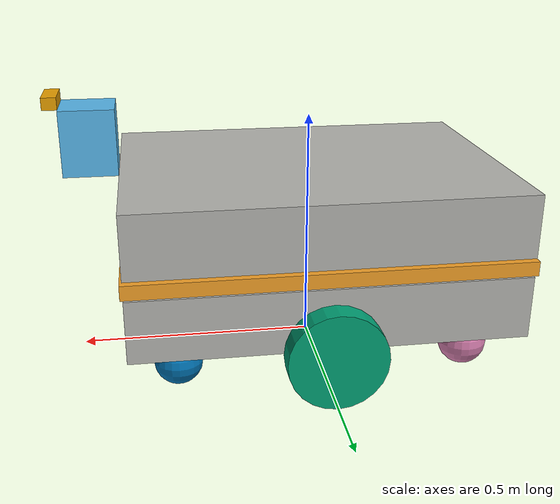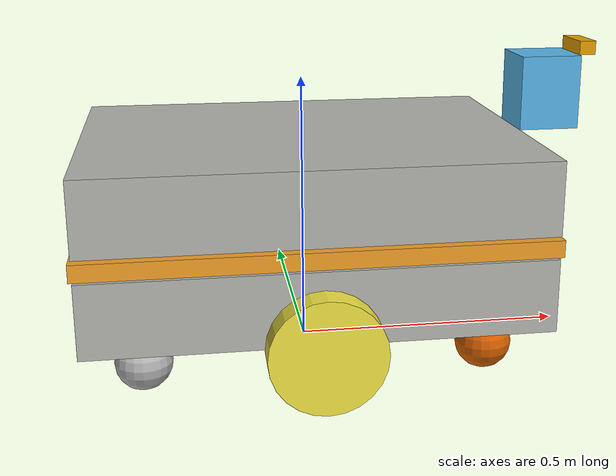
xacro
<?xml version="1.0"?>
<robot xmlns:xacro="http://www.ros.org/wiki/xacro" name="warehouse_rover">

<xacro:arg name="use_gazebo" default="true"/>

<xacro:include filename="$(find rover_description)/urdf/properties.xacro"/>
<xacro:include filename="$(find rover_description)/urdf/inertia_macros.xacro"/>
<xacro:include filename="$(find rover_description)/urdf/base.xacro"/>
<xacro:include filename="$(find rover_description)/urdf/wheels.xacro"/>
<xacro:include filename="$(find rover_description)/urdf/ros2_control.xacro"/>
<xacro:include filename="$(find rover_description)/urdf/caster_wheels.xacro"/>
<xacro:include filename="$(find rover_description)/urdf/gazebo_links.xacro"/>
<xacro:include filename="$(find rover_description)/urdf/gazebo_plugins.xacro"/>

</robot>

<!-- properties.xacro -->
<robot xmlns:xacro="http://www.ros.org/wiki/xacro">

<xacro:property name="body_length" value="0.80" />
<xacro:property name="body_width"  value="0.60" />
<xacro:property name="body_height" value="0.30" />
<xacro:property name="ground_clearance"  value="0.1" />

<xacro:property name="wheel_radius" value="0.10" />
<xacro:property name="wheel_width"  value="0.05" />
<xacro:property name="wheel_separation" value="0.66" />

<xacro:property name="caster_radius"  value="0.05" />

<xacro:property name="body_mass" value="70"/>
<xacro:property name="wheel_mass" value="2.5"/>
<xacro:property name="caster_mass" value="1.25"/>

<xacro:property name="laser_length" value="0.111" />
<xacro:property name="laser_width"  value="0.112" />
<xacro:property name="laser_height" value="0.135" />
<xacro:property name="laser_mass" value="1.15"/>

<xacro:property name="camera_length" value="0.03" />
<xacro:property name="camera_width"  value="0.09" />
<xacro:property name="camera_height" value="0.025" />
<xacro:property name="camera_mass" value="0.072"/>

<xacro:property name="deck_height" value="${ ground_clearance + body_height }"/>

<xacro:property name="base_foot" value="${ (body_height/2) + ground_clearance }"/>

<material name="body_grey">
  <color rgba="0.70 0.70 0.68 1.0"/>
</material>

<material name="dark_grey">
  <color rgba="0.25 0.25 0.24 1.0"/>
</material>

<material name="black">
  <color rgba="0.5 0.5 0.5 1.0"/>
</material>

<material name="warning_yellow">
  <color rgba="0.94 0.62 0.15 1.0"/>
</material>

<material name="sensor_blue">
  <color rgba="0.21 0.54 0.87 1.0"/>
</material>

</robot>

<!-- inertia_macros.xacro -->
<robot xmlns:xacro="http://www.ros.org/wiki/xacro">

<xacro:macro name="box_inertia" params="mass x y z">
  <inertial>
    <mass value="${mass}"/>
    <inertia ixx="${mass*(y*y+z*z)/12}" ixy="0" ixz="0"
             iyy="${mass*(x*x+z*z)/12}" iyz="0"
             izz="${mass*(x*x+y*y)/12}"/>
  </inertial>
</xacro:macro>

<xacro:macro name="cylinder_inertia" params="mass r h">
  <inertial>
    <mass value="${mass}"/>
    <inertia ixx="${(mass/12)*(3*r*r+h*h)}" ixy="0" ixz="0"
             iyy="${(mass/2)*(r*r)}" iyz="0"
             izz="${(mass/12)*(3*r*r+h*h)}"/>
  </inertial>
</xacro:macro>

<xacro:macro name="sphere_inertia" params="mass r">
  <inertial>
    <mass value="${mass}"/>
      <inertia ixx="${(2/5) * mass * (r*r)}" ixy="0" ixz="0"
             iyy="${(2/5) * mass * (r*r)}" iyz="0"
             izz="${(2/5) * mass * (r*r)}"/>
  </inertial>
</xacro:macro>

</robot>

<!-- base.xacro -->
<robot xmlns:xacro="http://www.ros.org/wiki/xacro">

        <link name="base_footprint"/>

        <link name="base_link">
   <visual>
    <origin xyz="0 0 0.085" rpy="0 0 0"/>
    <geometry>
        <box size="${body_length} ${body_width} 0.13"/>
    </geometry>
    <material name="body_grey"/>
</visual>

<visual>
    <origin xyz="0 0 -0.085" rpy="0 0 0"/>
    <geometry>
        <box size="${body_length} ${body_width} 0.13"/>
    </geometry>
    <material name="body_grey"/>
</visual>

<visual>
    <origin xyz="0 0 0" rpy="0 0 0"/>
    <geometry>
        <box size="${body_length + 0.01} ${body_width + 0.01} 0.03"/>
    </geometry>
    <material name="warning_yellow"/>
</visual>

    <collision>
        <geometry>
            <box size="${body_length} ${body_width} ${body_height}"/>
        </geometry>
    </collision>

    <xacro:box_inertia mass="${body_mass}" x="${body_length}" y="${body_width}" z="${body_height}"/>
</link>

         <joint name="base_footprint_joint" type="fixed">

            <parent link="base_footprint"/>
            <child link="base_link"/>
            <origin xyz="0 0.0 ${base_foot}" />

        </joint>

</robot>

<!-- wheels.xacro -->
<robot xmlns:xacro="http://www.ros.org/wiki/xacro">

<link name="left_wheel">
  <visual>
  <origin rpy="1.57 0 0" xyz="0 0 0"/>

      <geometry>
        <cylinder radius="${wheel_radius}" length="${wheel_width}"/>
      </geometry>

  </visual>

  <collision>
  <origin rpy="1.57 0 0" xyz="0 0 0"/>
  <geometry>
    <cylinder radius="${wheel_radius}" length="${wheel_width}"/>
  </geometry>
</collision>

<xacro:cylinder_inertia mass="${wheel_mass}" r="${wheel_radius}" h="${wheel_width}"/>

</link>

<joint name="left_wheel_joint" type="continuous">
  <parent link="base_link"/>
  <child link="left_wheel"/>
  <origin xyz="0 ${wheel_separation/2} ${-(body_height/2)}"/>
  <axis xyz="0 1 0"/>
</joint>

<link name="right_wheel">
  <visual>
  <origin rpy="1.57 0 0" xyz="0 0 0"/>

      <geometry>
        <cylinder radius="${wheel_radius}" length="${wheel_width}"/>
      </geometry>

  </visual>

  <collision>
  <origin rpy="1.57 0 0" xyz="0 0 0"/>
  <geometry>
    <cylinder radius="${wheel_radius}" length="${wheel_width}"/>
  </geometry>
</collision>
<xacro:cylinder_inertia mass="${wheel_mass}" r="${wheel_radius}" h="${wheel_width}"/>

</link>

    <joint name="right_wheel_joint" type="continuous">
    <parent link="base_link"/>
    <child link="right_wheel"/>
    <origin xyz="0 ${-wheel_separation/2} ${-(body_height/2)}"/>
    <axis xyz="0 1 0"/>
    </joint>

    <gazebo reference="left_wheel">
        <mu1>1.0</mu1>
        <mu2>1.0</mu2>
    </gazebo>

    <gazebo reference="right_wheel">
        <mu1>1.0</mu1>
        <mu2>1.0</mu2>
    </gazebo>

</robot>

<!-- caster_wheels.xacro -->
<robot xmlns:xacro="http://www.ros.org/wiki/xacro">
        <xacro:macro name="caster_wheel" params="prefix *origin">
        <link name="${prefix}">
            <visual>
            <geometry>
                <sphere radius="${caster_radius}"/>
            </geometry>
            </visual>

            <collision>
        <geometry>
            <sphere radius="${caster_radius}"/>
        </geometry>
        </collision>
            <xacro:sphere_inertia mass="${caster_mass}" r="${caster_radius}"/>
        </link>

        <gazebo reference="${prefix}">
        <mu1>0.0</mu1>
        <mu2>0.0</mu2>
        </gazebo>

        <joint name="${prefix}_joint" type="fixed">
            <parent link="base_link"/>
            <child link="${prefix}"/>
            <xacro:insert_block name="origin"/>
        </joint>
        </xacro:macro>

        <xacro:caster_wheel prefix="caster_front_left">
        <origin xyz="0.30 0.2 ${caster_radius - (ground_clearance + body_height/2)}"/>
        </xacro:caster_wheel>

        <xacro:caster_wheel prefix="caster_front_right">
        <origin xyz="0.30 -0.2 ${caster_radius - (ground_clearance + body_height/2)}"/>
        </xacro:caster_wheel>

        <xacro:caster_wheel prefix="caster_rear_left">
        <origin xyz="-0.30 0.2 ${caster_radius - (ground_clearance + body_height/2)}"/>
        </xacro:caster_wheel>

        <xacro:caster_wheel prefix="caster_rear_right">
        <origin xyz="-0.30 -0.2 ${caster_radius - (ground_clearance + body_height/2)}"/>
        </xacro:caster_wheel>

</robot>

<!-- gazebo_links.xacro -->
<robot xmlns:xacro="http://www.ros.org/wiki/xacro">

<link name="camera_link">

  <visual>
    <geometry>
      <box size="${camera_length} ${camera_width} ${camera_height}"/>
    </geometry>
  </visual>

  <collision>
    <geometry>
      <box size="${camera_length} ${camera_width} ${camera_height}"/>
    </geometry>
  </collision>
  <xacro:box_inertia mass="${camera_mass}" x="${camera_length}" y="${camera_width}" z="${camera_height}" />
</link>

<joint name="camera_joint" type="fixed">
  <origin xyz="${laser_length/2 + camera_length/2 } 0.0 ${laser_height/2 + camera_height /2}"/>
  <parent link="laser_link"/>
  <child link="camera_link"/>
</joint>

<gazebo reference="camera_link">
  <sensor name="camera" type="camera">
    <topic>camera/image_raw</topic>
    <update_rate>30</update_rate>
    <always_on>true</always_on>
    <gz_frame_id>camera_link</gz_frame_id>
    <camera>
      <horizontal_fov>1.047</horizontal_fov>
      <image>
        <width>640</width>
        <height>480</height>
        <format>R8G8B8</format>
      </image>
      <clip>
        <near>0.1</near>
        <far>15.0</far>
      </clip>
    </camera>
  </sensor>
</gazebo>

<link name="laser_link">

  <visual>
    <geometry>
      <box size="${laser_length} ${laser_width} ${laser_height}"/>
    </geometry>
  </visual>

  <collision>
    <geometry>
      <box size="${laser_length} ${laser_width} ${laser_height}"/>
    </geometry>
  </collision>
  <xacro:box_inertia mass="${laser_mass}" x="${laser_length}" y="${laser_width}" z="${laser_height}" />
</link>

<joint name="laser_joint" type="fixed">
  <origin xyz="${body_length/2 + laser_length/2} 0.0 ${body_height/2 + laser_height/2}"/>
  <parent link="base_link"/>
  <child link="laser_link"/>
</joint>

<gazebo reference="laser_link">
  <sensor name="laser" type="gpu_lidar">
    <topic>scan</topic>
    <gz_frame_id>laser_link</gz_frame_id>
    <update_rate>10</update_rate>
    <always_on>true</always_on>
    <visualize>true</visualize>
    <lidar>
      <scan>
        <horizontal>
          <samples>705</samples>
          <resolution>1</resolution>
          <min_angle>-2.4</min_angle>
          <max_angle>2.4</max_angle>
        </horizontal>
      </scan>
      <range>
        <min>0.05</min>
        <max>9.0</max>
        <resolution>0.01</resolution>
      </range>
    </lidar>
  </sensor>
</gazebo>

<link name="imu_link">
  <xacro:box_inertia mass="0.05" x="0.02" y="0.02" z="0.01"/>
</link>

<joint name="imu_joint" type="fixed">
  <parent link="base_link"/>
  <child link="imu_link"/>
  <origin xyz="0 0 0"/>
</joint>

<gazebo reference="imu_link">
  <sensor name="imu" type="imu">
    <topic>imu</topic>
    <update_rate>100</update_rate>
    <always_on>true</always_on>
    <gz_frame_id>imu_link</gz_frame_id>
  </sensor>
</gazebo>

</robot>
